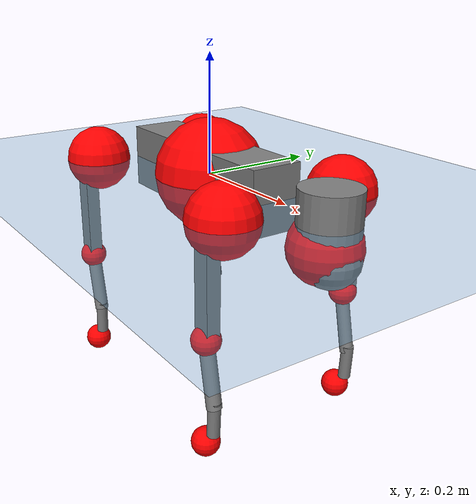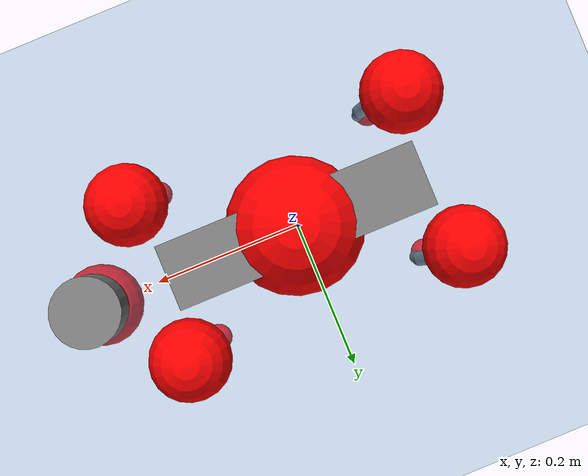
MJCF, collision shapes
<mujoco model="go2">
  <compiler angle="radian" assetdir="assets" balanceinertia="true" inertiafromgeom="false"/>

  <option timestep="0.005" density="1.2" viscosity="2e-05"/>

  <size nkey="1"/>

  <visual>
    <quality shadowsize="8192"/>
    <map shadowclip="0.5"/>
  </visual>

  <default>
    <default class="/">
      <geom contype="0" conaffinity="0" group="1" solref="-1000 -80"/>
      <site size="0.01 0.005 0.005" group="5"/>
      <general forcelimited="true" biastype="affine" gainprm="20" biasprm="0 -20 -0.5"/>
      <default class="go2">
        <joint armature="0.01" damping="0.01" frictionloss="0.2"/>
        <geom condim="1" margin="0.001"/>
        <default class="visual">
          <geom type="mesh" group="2"/>
        </default>
        <default class="collision">
          <geom group="3"/>
          <default class="foot">
            <geom size="0.022 0 0" condim="6" priority="1" friction="0.8 0.02 0.01" solimp="0.015 1 0.022"/>
          </default>
        </default>
        <default class="reward_collision_sphere">
          <geom group="5" rgba="1 0 0 1"/>
        </default>
      </default>
    </default>
  </default>

  <asset>
    <texture type="skybox" colorspace="auto" name="//unnamed_texture_0" builtin="gradient" rgb1="0.95 0.95 0.95" rgb2="0.95 0.95 0.95" width="100" height="600"/>
    <texture type="2d" colorspace="auto" name="texplane" builtin="checker" rgb1="0.345 0.575 0.748" rgb2="0.345 0.575 0.748" markrgb="1 1 1" width="512" height="512"/>
    <material name="MatPlane" class="/" texture="texplane" texuniform="true" texrepeat="2 2" specular="0.9"/>
    <material name="metal" class="/" rgba="0.9 0.95 0.95 1"/>
    <material name="black" class="/" rgba="0 0 0 1"/>
    <material name="white" class="/"/>
    <material name="gray" class="/" rgba="0.671705 0.692426 0.77427 1"/>
    <mesh name="base_0" class="/" file="base_0.obj"/>
    <mesh name="base_1" class="/" file="base_1.obj"/>
    <mesh name="base_2" class="/" file="base_2.obj"/>
    <mesh name="base_3" class="/" file="base_3.obj"/>
    <mesh name="base_4" class="/" file="base_4.obj"/>
    <mesh name="hip_0" class="/" file="hip_0.obj"/>
    <mesh name="hip_1" class="/" file="hip_1.obj"/>
    <mesh name="thigh_0" class="/" file="thigh_0.obj"/>
    <mesh name="thigh_1" class="/" file="thigh_1.obj"/>
    <mesh name="thigh_mirror_0" class="/" file="thigh_mirror_0.obj"/>
    <mesh name="thigh_mirror_1" class="/" file="thigh_mirror_1.obj"/>
    <mesh name="calf_0" class="/" file="calf_0.obj"/>
    <mesh name="calf_1" class="/" file="calf_1.obj"/>
    <mesh name="calf_mirror_0" class="/" file="calf_mirror_0.obj"/>
    <mesh name="calf_mirror_1" class="/" file="calf_mirror_1.obj"/>
    <mesh name="foot" class="/" file="foot.obj"/>
  </asset>

  <worldbody>
    <geom name="floor" class="/" size="100 100 0.125" type="plane" group="0" material="MatPlane"/>
    <light name="toplight_shadow" class="/" pos="0 0 5" dir="0.0990148 0.0990148 -0.990148" type="directional" ambient="0.04 0.04 0.04" diffuse="0.55 0.55 0.55" specular="0.12 0.12 0.12"/>
    <light name="toplight_fill" class="/" pos="0 0 5" dir="0.0990148 0.0990148 -0.990148" type="directional" castshadow="false" ambient="0.04 0.04 0.04" diffuse="0.3 0.3 0.3" specular="0.08 0.08 0.08"/>
    <body name="trunk" childclass="go2" pos="0.00236787 -0.000490077 0.000652052" quat="0.999999 8.69441e-05 -0.00094719 -0.000391895">
      <inertial pos="0.0191897 -0.00083546 -0.00505631" quat="-0.00082021 0.714086 -0.00151184 0.700056" mass="5.54238" diaginertia="0.118406 0.0772605 0.0104232"/>
      <joint name="//unnamed_joint_0" type="free" armature="0" damping="0" frictionloss="0"/>
      <geom name="//unnamed_geom_1" class="visual" material="black" mesh="base_0"/>
      <geom name="//unnamed_geom_2" class="visual" material="black" mesh="base_1"/>
      <geom name="//unnamed_geom_3" class="visual" material="black" mesh="base_2"/>
      <geom name="//unnamed_geom_4" class="visual" material="white" mesh="base_3"/>
      <geom name="//unnamed_geom_5" class="visual" material="gray" mesh="base_4"/>
      <geom name="trunk_1" class="collision" size="0.177249 0.044053 0.0537117" type="box"/>
      <geom name="trunk_2" class="collision" size="0.0471156 0.042404" pos="0.291629 0 0.00847599" type="cylinder"/>
      <geom name="trunk_3" class="collision" size="0.0442886" pos="0.299815 0 -0.050856"/>
      <geom name="//unnamed_geom_9" class="reward_collision_sphere" size="0.0942311"/>
      <geom name="//unnamed_geom_10" class="reward_collision_sphere" size="0.0565387" pos="0.286513 0 -0.038142"/>
      <site name="imu" pos="-0.0288691 -0.0013198 0.0454971" size="0.00942311"/>
      <camera name="track" pos="0 -1.91215 0" quat="0.707107 0.707107 0 0" mode="trackcom"/>
      <camera name="ego_camera" pos="0.319257 0 0.038142" quat="-0.5 -0.5 0.5 0.5"/>
      <body name="FL_hip" pos="0.19783 0.045329 0.00133129" quat="1 -4.19689e-05 0.000241607 0.00042185">
        <inertial pos="-0.00623735 0.00133395 -0.000321531" quat="0.495676 0.49869 0.50517 0.500417" mass="0.568124" diaginertia="0.00101443 0.00047045 0.000209543"/>
        <joint name="FL_hip_joint" pos="0 0 0" axis="0.999891 0.00973603 0.0111261" range="-1.00315 1.04004" armature="0.00930491" damping="0.00504585" frictionloss="0.190436"/>
        <geom name="//unnamed_geom_11" class="visual" material="metal" mesh="hip_0"/>
        <geom name="//unnamed_geom_12" class="visual" material="gray" mesh="hip_1"/>
        <geom name="//unnamed_geom_13" class="collision" size="0.0433463 0.0188462" pos="0 0.0764858 0" quat="0.707107 0.707107 0 0" type="cylinder"/>
        <geom name="//unnamed_geom_14" class="reward_collision_sphere" size="0.0565387" pos="0 0.0669251 0"/>
        <body name="FL_thigh" pos="-0.00144583 0.0907065 0.00194392" quat="1 -6.20337e-05 -0.000191909 -0.000653972">
          <inertial pos="-0.00334844 -0.0215043 -0.0295526" quat="0.829611 0.0848408 -0.0200221 0.551495" mass="0.948452" diaginertia="0.00655598 0.00464465 0.000391757"/>
          <joint name="FL_thigh_joint" pos="0 0 0" axis="0.0108803 0.99994 0.00147714" range="-1.57957 3.49452" armature="0.00980087" damping="0.00316145" frictionloss="0.198127"/>
          <geom name="//unnamed_geom_15" class="visual" material="metal" mesh="thigh_0"/>
          <geom name="//unnamed_geom_16" class="visual" material="gray" mesh="thigh_1"/>
          <geom name="//unnamed_geom_17" class="collision" size="0.100356 0.0115433 0.0160193" pos="0 0 -0.0902693" quat="0.707107 0 0.707107 0" type="box"/>
          <body name="FL_calf" pos="-0.000425559 -0.00261091 -0.180177" quat="1 -5.59831e-07 1.74393e-05 5.69071e-05">
            <inertial pos="0.00510226 -0.000619404 -0.118722" quat="0.709079 -0.00207043 -0.00674518 0.705094" mass="0.201837" diaginertia="0.00172208 0.00120913 2.36564e-05"/>
            <joint name="FL_calf_joint" pos="0 0 0" axis="0.00446581 0.99999 -0.000819927" stiffness="0.00338098" range="-2.76544 -0.828091" armature="0.00922891" damping="0" frictionloss="0.185068"/>
            <geom name="//unnamed_geom_18" class="visual" material="gray" mesh="calf_0"/>
            <geom name="//unnamed_geom_19" class="visual" material="black" mesh="calf_1"/>
            <geom name="FL_calf0" class="collision" size="0.0113077 0.0565387" pos="0.00818609 0 -0.050856" quat="0.994493 0 -0.104807 0" type="cylinder"/>
            <geom name="//unnamed_geom_21" class="collision" size="0.0103654 0.0306251" pos="0.0204652 0 -0.125445" quat="0.999688 0 0.0249974 0" type="cylinder"/>
            <geom name="//unnamed_geom_22" class="visual" pos="0 0 -0.180539" quat="1 0 0 0" material="black" mesh="foot"/>
            <geom name="FL_foot" class="foot" size="0.0181546" pos="-0.00204652 0 -0.180539"/>
            <geom name="//unnamed_geom_24" class="reward_collision_sphere" size="0.0235578"/>
            <geom name="//unnamed_geom_25" class="reward_collision_sphere" size="0.0235578" pos="-0.00204652 0 -0.180539"/>
            <site name="FL_foot" class="foot" pos="-0.00204652 0 -0.180539" size="0.00942311"/>
          </body>
        </body>
      </body>
      <body name="FR_hip" pos="0.198637 -0.0451109 -0.00183779" quat="1 -0.000333074 -0.000335004 -0.000220986">
        <inertial pos="-0.00555127 -0.00358199 -0.000652517" quat="0.504418 0.505318 0.496185 0.49398" mass="0.563016" diaginertia="0.000981399 0.000477398 0.000209506"/>
        <joint name="FR_hip_joint" pos="0 0 0" axis="0.999996 0.00193059 -0.00212434" stiffness="0.00556584" range="-1.0703 1.04682" armature="0.00900112" damping="0.0186425" frictionloss="0.173596"/>
        <geom name="//unnamed_geom_26" class="visual" pos="0 9.44975e-10 4.05319e-08" quat="4.63268e-05 1 0 0" material="metal" mesh="hip_0"/>
        <geom name="//unnamed_geom_27" class="visual" pos="0 1.53192e-09 -1.00251e-07" quat="4.63268e-05 1 0 0" material="gray" mesh="hip_1"/>
        <geom name="//unnamed_geom_28" class="collision" size="0.0433463 0.0188462" pos="0 -0.0764858 0" quat="0.707107 0.707107 0 0" type="cylinder"/>
        <geom name="//unnamed_geom_29" class="reward_collision_sphere" size="0.0565387" pos="0 -0.0669251 0"/>
        <body name="FR_thigh" pos="0.000299574 -0.0937523 -0.00122734" quat="1 0.000254556 -4.08024e-05 -6.25507e-05">
          <inertial pos="-0.00376091 0.0203719 -0.02812" quat="0.550409 -0.0210769 0.0841254 0.830378" mass="0.973551" diaginertia="0.00667862 0.00476109 0.000394563"/>
          <joint name="FR_thigh_joint" pos="0 0 0" axis="-0.000171612 -0.999999 0.00117157" range="-3.49655 1.59562" armature="0.00949212" damping="0.0161662" frictionloss="0.181306"/>
          <geom name="//unnamed_geom_30" class="visual" material="metal" mesh="thigh_mirror_0"/>
          <geom name="//unnamed_geom_31" class="visual" material="gray" mesh="thigh_mirror_1"/>
          <geom name="//unnamed_geom_32" class="collision" size="0.100356 0.0115433 0.0160193" pos="0 0 -0.0902693" quat="0.707107 0 0.707107 0" type="box"/>
          <body name="FR_calf" pos="-0.000798429 -0.00198016 -0.179425" quat="1 1.02621e-05 -5.04322e-05 -5.77546e-05">
            <inertial pos="0.00629768 0.00117801 -0.120578" quat="0.708904 -0.00638048 -0.00346224 0.705267" mass="0.201679" diaginertia="0.00167657 0.00117034 2.30288e-05"/>
            <joint name="FR_calf_joint" pos="0 0 0" axis="0.00702593 -0.999941 -0.00828458" range="0.8457 2.73818" armature="0.00988438" damping="0.0179656" frictionloss="0.197253"/>
            <geom name="//unnamed_geom_33" class="visual" material="gray" mesh="calf_mirror_0"/>
            <geom name="//unnamed_geom_34" class="visual" material="black" mesh="calf_mirror_1"/>
            <geom name="FR_calf0" class="collision" size="0.01225 0.0565387" pos="0.0102326 0 -0.050856" quat="0.995004 0 -0.0998334 0" type="cylinder"/>
            <geom name="//unnamed_geom_36" class="collision" size="0.0103654 0.0306251" pos="0.0204652 0 -0.125445" quat="0.999688 0 0.0249974 0" type="cylinder"/>
            <geom name="//unnamed_geom_37" class="visual" pos="0 0 -0.180539" quat="1 0 0 0" material="black" mesh="foot"/>
            <geom name="FR_foot" class="foot" size="0.0231697" pos="-0.00204652 0 -0.180539"/>
            <geom name="//unnamed_geom_39" class="reward_collision_sphere" size="0.0235578"/>
            <geom name="//unnamed_geom_40" class="reward_collision_sphere" size="0.0235578" pos="-0.00204652 0 -0.180539"/>
            <site name="FR_foot" class="foot" pos="-0.00204652 0 -0.180539" size="0.00942311"/>
          </body>
        </body>
      </body>
      <body name="RL_hip" pos="-0.198503 0.0449568 -0.0010733" quat="1 -0.000140048 -0.00019408 0.000438589">
        <inertial pos="0.00454859 0.00443036 -0.000671904" quat="0.505148 0.491053 0.506491 0.497151" mass="0.578916" diaginertia="0.000992557 0.000474385 0.000213828"/>
        <joint name="RL_hip_joint" pos="0 0 0" axis="-0.999831 0.0146939 -0.0110575" stiffness="0.00400834" range="-1.05532 1.04471" armature="0.00879023" damping="0.0161317" frictionloss="0.205813"/>
        <geom name="//unnamed_geom_41" class="visual" pos="-1.53029e-09 0 -2.99972e-07" quat="4.63268e-05 0 1 0" material="metal" mesh="hip_0"/>
        <geom name="//unnamed_geom_42" class="visual" pos="-2.48078e-09 0 -2.66032e-07" quat="4.63268e-05 0 1 0" material="gray" mesh="hip_1"/>
        <geom name="//unnamed_geom_43" class="collision" size="0.0433463 0.0188462" pos="0 0.0764858 0" quat="0.707107 0.707107 0 0" type="cylinder"/>
        <geom name="//unnamed_geom_44" class="reward_collision_sphere" size="0.0565387" pos="0 0.0669251 0"/>
        <body name="RL_thigh" pos="-8.95275e-05 0.0888927 0.00149288" quat="1 -5.82416e-06 -0.000198313 -3.47219e-05">
          <inertial pos="-0.00358376 -0.0212961 -0.0279908" quat="0.828808 0.0896282 -0.0213723 0.551894" mass="0.979647" diaginertia="0.00661612 0.00461347 0.000382134"/>
          <joint name="RL_thigh_joint" pos="0 0 0" axis="0.00312645 0.999991 0.00283162" stiffness="0.00642854" range="-0.51558 4.53839" armature="0.00988424" damping="0.0101818" frictionloss="0.189433"/>
          <geom name="//unnamed_geom_45" class="visual" material="metal" mesh="thigh_0"/>
          <geom name="//unnamed_geom_46" class="visual" material="gray" mesh="thigh_1"/>
          <geom name="//unnamed_geom_47" class="collision" size="0.100356 0.0115433 0.0160193" pos="0 0 -0.0902693" quat="0.707107 0 0.707107 0" type="box"/>
          <body name="RL_calf" pos="-0.000147067 -0.00110964 -0.182786" quat="1 1.82274e-05 0.000181152 8.2231e-06">
            <inertial pos="0.00743341 0.00186917 -0.119396" quat="0.710016 0.00309953 -0.00471198 0.704163" mass="0.199234" diaginertia="0.0016556 0.00115942 2.22831e-05"/>
            <joint name="RL_calf_joint" pos="0 0 0" axis="-0.000391813 0.999999 -0.00153431" range="-2.7179 -0.850452" armature="0.00934692" damping="0.00379673" frictionloss="0.209719"/>
            <geom name="//unnamed_geom_48" class="visual" material="gray" mesh="calf_0"/>
            <geom name="//unnamed_geom_49" class="visual" material="black" mesh="calf_1"/>
            <geom name="RL_calf0" class="collision" size="0.01225 0.0565387" pos="0.0102326 0 -0.050856" quat="0.995004 0 -0.0998334 0" type="cylinder"/>
            <geom name="//unnamed_geom_51" class="collision" size="0.0103654 0.0306251" pos="0.0204652 0 -0.125445" quat="0.999688 0 0.0249974 0" type="cylinder"/>
            <geom name="//unnamed_geom_52" class="visual" pos="0 0 -0.180539" quat="1 0 0 0" material="black" mesh="foot"/>
            <geom name="RL_foot" class="foot" size="0.0175293" pos="-0.00204652 0 -0.180539"/>
            <geom name="//unnamed_geom_54" class="reward_collision_sphere" size="0.0235578"/>
            <geom name="//unnamed_geom_55" class="reward_collision_sphere" size="0.0235578" pos="-0.00204652 0 -0.180539"/>
            <site name="RL_foot" class="foot" pos="-0.00204652 0 -0.180539" size="0.00942311"/>
          </body>
        </body>
      </body>
      <body name="RR_hip" pos="-0.198924 -0.044381 -7.4646e-05" quat="0.999999 -0.000245183 0.000898783 0.000493098">
        <inertial pos="0.007638 -0.000873602 -0.00226912" quat="0.502002 0.495357 0.497959 0.504631" mass="0.568813" diaginertia="0.000998259 0.000477441 0.000209074"/>
        <joint name="RR_hip_joint" pos="0 0 0" axis="-0.999921 0.00186279 -0.0124357" range="-1.06644 1.04764" armature="0.00972378" damping="0.0132698" frictionloss="0.186542"/>
        <geom name="//unnamed_geom_56" class="visual" pos="1.52796e-09 9.44975e-10 -3.40504e-07" quat="2.14617e-09 4.63268e-05 4.63268e-05 -1" material="metal" mesh="hip_0"/>
        <geom name="//unnamed_geom_57" class="visual" pos="2.48654e-09 1.53192e-09 -1.65781e-07" quat="2.14617e-09 4.63268e-05 4.63268e-05 -1" material="gray" mesh="hip_1"/>
        <geom name="//unnamed_geom_58" class="collision" size="0.0433463 0.0188462" pos="0 -0.0764858 0" quat="0.707107 0.707107 0 0" type="cylinder"/>
        <geom name="//unnamed_geom_59" class="reward_collision_sphere" size="0.0565387" pos="0 -0.0669251 0"/>
        <body name="RR_thigh" pos="0.000497121 -0.0912109 -0.00282363" quat="1 -0.000101392 3.18157e-05 -0.000221594">
          <inertial pos="-0.00382227 0.021298 -0.0278433" quat="0.550684 -0.0200008 0.0838472 0.830251" mass="0.943429" diaginertia="0.00667033 0.0046847 0.000385147"/>
          <joint name="RR_thigh_joint" pos="0 0 0" axis="0.0118465 -0.999919 -0.00466797" range="-4.53759 0.558263" armature="0.00918346" damping="0.0125661" frictionloss="0.186049"/>
          <geom name="//unnamed_geom_60" class="visual" material="metal" mesh="thigh_mirror_0"/>
          <geom name="//unnamed_geom_61" class="visual" material="gray" mesh="thigh_mirror_1"/>
          <geom name="//unnamed_geom_62" class="collision" size="0.100356 0.0115433 0.0160193" pos="0 0 -0.0902693" quat="0.707107 0 0.707107 0" type="box"/>
          <body name="RR_calf" pos="-0.000801389 0.000913334 -0.181563" quat="1 -7.58995e-05 -0.000120402 4.31081e-05">
            <inertial pos="0.00539505 0.000866049 -0.119841" quat="0.702784 -0.00477359 0.000620463 0.711387" mass="0.200248" diaginertia="0.00164732 0.0011636 2.36051e-05"/>
            <joint name="RR_calf_joint" pos="0 0 0" axis="-0.0126367 -0.999876 -0.00937357" range="0.854976 2.72835" armature="0.00985737" damping="0.0193625" frictionloss="0.196919"/>
            <geom name="//unnamed_geom_63" class="visual" material="gray" mesh="calf_mirror_0"/>
            <geom name="//unnamed_geom_64" class="visual" material="black" mesh="calf_mirror_1"/>
            <geom name="RR_calf0" class="collision" size="0.01225 0.0565387" pos="0.0102326 0 -0.050856" quat="0.995004 0 -0.0998334 0" type="cylinder"/>
            <geom name="//unnamed_geom_66" class="collision" size="0.0103654 0.0306251" pos="0.0204652 0 -0.125445" quat="0.999688 0 0.0249974 0" type="cylinder"/>
            <geom name="//unnamed_geom_67" class="visual" pos="0 0 -0.180539" quat="1 0 0 0" material="black" mesh="foot"/>
            <geom name="RR_foot" class="foot" size="0.0218894" pos="-0.00204652 0 -0.180539"/>
            <geom name="//unnamed_geom_69" class="reward_collision_sphere" size="0.0235578"/>
            <geom name="//unnamed_geom_70" class="reward_collision_sphere" size="0.0235578" pos="-0.00204652 0 -0.180539"/>
            <site name="RR_foot" class="foot" pos="-0.00204652 0 -0.180539" size="0.00942311"/>
          </body>
        </body>
      </body>
    </body>
  </worldbody>

  <contact>
    <pair class="/" geom1="floor" geom2="FL_foot" name="//unnamed_contact_0"/>
    <pair class="/" geom1="floor" geom2="FR_foot" name="//unnamed_contact_1"/>
    <pair class="/" geom1="floor" geom2="RL_foot" name="//unnamed_contact_2"/>
    <pair class="/" geom1="floor" geom2="RR_foot" name="//unnamed_contact_3"/>
  </contact>

  <actuator>
    <general name="FL_hip" class="/" joint="FL_hip_joint" forcerange="-22.4285 22.4285" gainprm="18.9327" biasprm="0 -18.9327 -0.460735"/>
    <general name="FL_thigh" class="/" joint="FL_thigh_joint" forcerange="-22.6522 22.6522" gainprm="18.9327" biasprm="0 -18.9327 -0.460735"/>
    <general name="FL_calf" class="/" joint="FL_calf_joint" forcerange="-42.28 42.28" gainprm="18.9327" biasprm="0 -18.9327 -0.460735"/>
    <general name="FR_hip" class="/" joint="FR_hip_joint" forcerange="-22.2917 22.2917" gainprm="18.9327" biasprm="0 -18.9327 -0.460735"/>
    <general name="FR_thigh" class="/" joint="FR_thigh_joint" forcerange="-22.0408 22.0408" gainprm="18.9327" biasprm="0 -18.9327 -0.460735"/>
    <general name="FR_calf" class="/" joint="FR_calf_joint" forcerange="-43.1549 43.1549" gainprm="18.9327" biasprm="0 -18.9327 -0.460735"/>
    <general name="RL_hip" class="/" joint="RL_hip_joint" forcerange="-24.1825 24.1825" gainprm="18.9327" biasprm="0 -18.9327 -0.460735"/>
    <general name="RL_thigh" class="/" joint="RL_thigh_joint" forcerange="-22.9157 22.9157" gainprm="18.9327" biasprm="0 -18.9327 -0.460735"/>
    <general name="RL_calf" class="/" joint="RL_calf_joint" forcerange="-39.42 39.42" gainprm="18.9327" biasprm="0 -18.9327 -0.460735"/>
    <general name="RR_hip" class="/" joint="RR_hip_joint" forcerange="-21.8503 21.8503" gainprm="18.9327" biasprm="0 -18.9327 -0.460735"/>
    <general name="RR_thigh" class="/" joint="RR_thigh_joint" forcerange="-24.0574 24.0574" gainprm="18.9327" biasprm="0 -18.9327 -0.460735"/>
    <general name="RR_calf" class="/" joint="RR_calf_joint" forcerange="-42.1335 42.1335" gainprm="18.9327" biasprm="0 -18.9327 -0.460735"/>
  </actuator>

  <sensor>
    <gyro site="imu" name="imu_angular_velocity"/>
    <velocimeter site="imu" name="imu_linear_velocity"/>
    <framelinvel objtype="site" objname="FL_foot" name="FL_foot_global_linear_velocity"/>
    <framelinvel objtype="site" objname="FR_foot" name="FR_foot_global_linear_velocity"/>
    <framelinvel objtype="site" objname="RL_foot" name="RL_foot_global_linear_velocity"/>
    <framelinvel objtype="site" objname="RR_foot" name="RR_foot_global_linear_velocity"/>
  </sensor>

  <keyframe>
    <key name="home" qpos="0 0 0.325 1 0 0 0 0.1 0.8 -1.5 -0.1 -0.8 1.5 -0.1 0.8 -1.5 0.1 -0.8 1.5"/>
  </keyframe>
</mujoco>
